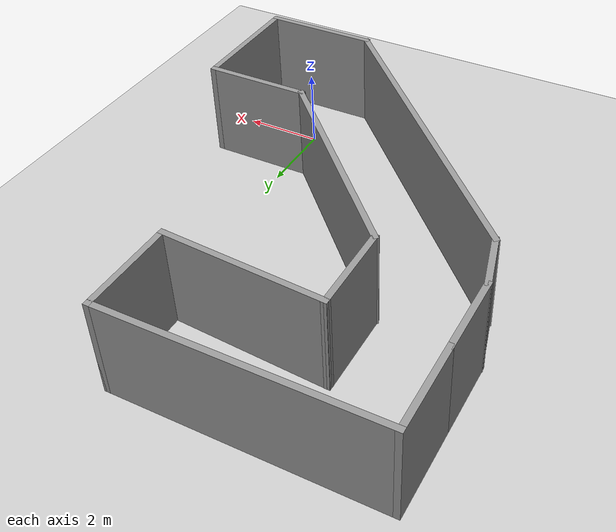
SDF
<sdf version="1.6">
 <world name="default">
  <light name="sun" type="directional">
   <pose>0 0 10 0 -0 0</pose>
   <diffuse>0.8 0.8 0.8 1</diffuse>
   <specular>0.2 0.2 0.2 1</specular>
   <attenuation>
    <range>1000</range>
    <constant>0.9</constant>
    <linear>0.01</linear>
    <quadratic>0.001</quadratic>
   </attenuation>
   <direction>-0.5 0.1 -0.9</direction>
  </light>
  <model name="ground_plane">
   <static>1</static>
   <link name="link">
    <collision name="collision">
     <geometry><plane><normal>0 0 1</normal><size>100 100</size></plane></geometry>
     <surface>
      <contact><collide_bitmask>65535</collide_bitmask></contact>
      <friction><ode><mu>100</mu><mu2>50</mu2></ode></friction>
     </surface>
    </collision>
    <visual name="visual">
     <cast_shadows>0</cast_shadows>
     <geometry><plane><normal>0 0 1</normal><size>100 100</size></plane></geometry>
     <material>
      <script><uri>file://media/materials/scripts/gazebo.material</uri><name>Gazebo/Grey</name></script>
     </material>
    </visual>
   </link>
  </model>
  <gravity>0 0 -9.8</gravity>
  <magnetic_field>6e-06 2.3e-05 -4.2e-05</magnetic_field>
  <atmosphere type="adiabatic"/>
  <physics name="default_physics" default="0" type="ode">
   <max_step_size>0.001</max_step_size>
   <real_time_factor>1</real_time_factor>
   <real_time_update_rate>1000</real_time_update_rate>
  </physics>
  <scene><ambient>0.4 0.4 0.4 1</ambient><background>0.7 0.7 0.7 1</background><shadows>1</shadows></scene>
  <spherical_coordinates>
   <surface_model>EARTH_WGS84</surface_model>
   <latitude_deg>0</latitude_deg>
   <longitude_deg>0</longitude_deg>
   <elevation>0</elevation>
   <heading_deg>0</heading_deg>
  </spherical_coordinates>
  <model name="Untitled">
   <pose>-2.62244 4.0511 0 0 -0 0</pose>
   <link name="Wall_0">
    <collision name="Wall_0_Collision">
     <geometry><box><size>3 0.15 2.5</size></box></geometry>
     <pose>0 0 1.25 0 -0 0</pose>
    </collision>
    <visual name="Wall_0_Visual">
     <pose>0 0 1.25 0 -0 0</pose>
     <geometry><box><size>3 0.15 2.5</size></box></geometry>
     <material>
      <script><uri>file://media/materials/scripts/gazebo.material</uri><name>Gazebo/Grey</name></script>
      <ambient>1 1 1 1</ambient>
     </material>
     <meta><layer>0</layer></meta>
    </visual>
    <pose>3.25171 -5.70275 0 0 -0 0</pose>
   </link>
   <link name="Wall_10">
    <collision name="Wall_10_Collision">
     <geometry><box><size>1.5 0.15 2.5</size></box></geometry>
     <pose>0 0 1.25 0 -0 0</pose>
    </collision>
    <visual name="Wall_10_Visual">
     <pose>0 0 1.25 0 -0 0</pose>
     <geometry><box><size>1.5 0.15 2.5</size></box></geometry>
     <material>
      <script><uri>file://media/materials/scripts/gazebo.material</uri><name>Gazebo/Grey</name></script>
      <ambient>1 1 1 1</ambient>
     </material>
     <meta><layer>0</layer></meta>
    </visual>
    <pose>-4.48516 1.13182 0 0 0 -1.309</pose>
   </link>
   <link name="Wall_11">
    <collision name="Wall_11_Collision">
     <geometry><box><size>8.86143 0.15 2.5</size></box></geometry>
     <pose>0 0 1.25 0 -0 0</pose>
    </collision>
    <visual name="Wall_11_Visual">
     <pose>0 0 1.25 0 -0 0</pose>
     <geometry><box><size>8.86143 0.15 2.5</size></box></geometry>
     <material>
      <script><uri>file://media/materials/scripts/gazebo.material</uri><name>Gazebo/Grey</name></script>
      <ambient>1 1 1 1</ambient>
     </material>
     <meta><layer>0</layer></meta>
    </visual>
    <pose>-1.24187 -2.61147 0 0 0 -0.789084</pose>
   </link>
   <link name="Wall_13">
    <collision name="Wall_13_Collision">
     <geometry><box><size>2.25 0.15 2.5</size></box></geometry>
     <pose>0 0 1.25 0 -0 0</pose>
    </collision>
    <visual name="Wall_13_Visual">
     <pose>0 0 1.25 0 -0 0</pose>
     <geometry><box><size>2.25 0.15 2.5</size></box></geometry>
     <material>
      <script><uri>file://media/materials/scripts/gazebo.material</uri><name>Gazebo/Grey</name></script>
      <ambient>1 1 1 1</ambient>
     </material>
     <meta><layer>0</layer></meta>
    </visual>
    <pose>-4.65986 4.68382 0 0 -0 1.5708</pose>
   </link>
   <link name="Wall_15">
    <collision name="Wall_15_Collision">
     <geometry><box><size>6.75 0.15 2.5</size></box></geometry>
     <pose>0 0 1.25 0 -0 0</pose>
    </collision>
    <visual name="Wall_15_Visual">
     <pose>0 0 1.25 0 -0 0</pose>
     <geometry><box><size>6.75 0.15 2.5</size></box></geometry>
     <material>
      <script><uri>file://media/materials/scripts/gazebo.material</uri><name>Gazebo/Grey</name></script>
      <ambient>1 1 1 1</ambient>
     </material>
     <meta><layer>0</layer></meta>
    </visual>
    <pose>-1.35986 5.73382 0 0 -0 0</pose>
   </link>
   <link name="Wall_16">
    <collision name="Wall_16_Collision">
     <geometry><box><size>2.5 0.15 2.5</size></box></geometry>
     <pose>0 0 1.25 0 -0 0</pose>
    </collision>
    <visual name="Wall_16_Visual">
     <pose>0 0 1.25 0 -0 0</pose>
     <geometry><box><size>2.5 0.15 2.5</size></box></geometry>
     <material>
      <script><uri>file://media/materials/scripts/gazebo.material</uri><name>Gazebo/Grey</name></script>
      <ambient>1 1 1 1</ambient>
     </material>
     <meta><layer>0</layer></meta>
    </visual>
    <pose>1.94014 4.55882 0 0 0 -1.5708</pose>
   </link>
   <link name="Wall_17">
    <collision name="Wall_17_Collision">
     <geometry><box><size>4.1578 0.15 2.5</size></box></geometry>
     <pose>0 0 1.25 0 -0 0</pose>
    </collision>
    <visual name="Wall_17_Visual">
     <pose>0 0 1.25 0 -0 0</pose>
     <geometry><box><size>4.1578 0.15 2.5</size></box></geometry>
     <material>
      <script><uri>file://media/materials/scripts/gazebo.material</uri><name>Gazebo/Grey</name></script>
      <ambient>1 1 1 1</ambient>
     </material>
     <meta><layer>0</layer></meta>
    </visual>
    <pose>-0.05986 3.50882 0 0 -0 3.07917</pose>
   </link>
   <link name="Wall_2">
    <collision name="Wall_2_Collision">
     <geometry><box><size>3.25 0.15 2.5</size></box></geometry>
     <pose>0 0 1.25 0 -0 0</pose>
    </collision>
    <visual name="Wall_2_Visual">
     <pose>0 0 1.25 0 -0 0</pose>
     <geometry><box><size>3.25 0.15 2.5</size></box></geometry>
     <material>
      <script><uri>file://media/materials/scripts/gazebo.material</uri><name>Gazebo/Grey</name></script>
      <ambient>1 1 1 1</ambient>
     </material>
     <meta><layer>0</layer></meta>
    </visual>
    <pose>4.67671 -4.15275 0 0 -0 1.5708</pose>
   </link>
   <link name="Wall_5">
    <collision name="Wall_5_Collision">
     <geometry><box><size>2.75 0.15 2.5</size></box></geometry>
     <pose>0 0 1.25 0 -0 0</pose>
    </collision>
    <visual name="Wall_5_Visual">
     <pose>0 0 1.25 0 -0 0</pose>
     <geometry><box><size>2.75 0.15 2.5</size></box></geometry>
     <material>
      <script><uri>file://media/materials/scripts/gazebo.material</uri><name>Gazebo/Grey</name></script>
      <ambient>1 1 1 1</ambient>
     </material>
     <meta><layer>0</layer></meta>
    </visual>
    <pose>3.37671 -2.60275 0 0 -0 3.14159</pose>
   </link>
   <link name="Wall_6">
    <collision name="Wall_6_Collision">
     <geometry><box><size>6 0.15 2.5</size></box></geometry>
     <pose>0 0 1.25 0 -0 0</pose>
    </collision>
    <visual name="Wall_6_Visual">
     <pose>0 0 1.25 0 -0 0</pose>
     <geometry><box><size>6 0.15 2.5</size></box></geometry>
     <material>
      <script><uri>file://media/materials/scripts/gazebo.material</uri><name>Gazebo/Grey</name></script>
      <ambient>1 1 1 1</ambient>
     </material>
     <meta><layer>0</layer></meta>
    </visual>
    <pose>0.008428 -0.534467 0 0 -0 2.35619</pose>
   </link>
   <link name="Wall_7">
    <collision name="Wall_7_Collision">
     <geometry><box><size>2.25 0.15 2.5</size></box></geometry>
     <pose>0 0 1.25 0 -0 0</pose>
    </collision>
    <visual name="Wall_7_Visual">
     <pose>0 0 1.25 0 -0 0</pose>
     <geometry><box><size>2.25 0.15 2.5</size></box></geometry>
     <material>
      <script><uri>file://media/materials/scripts/gazebo.material</uri><name>Gazebo/Grey</name></script>
      <ambient>1 1 1 1</ambient>
     </material>
     <meta><layer>0</layer></meta>
    </visual>
    <pose>-2.05986 2.58382 0 0 -0 1.5708</pose>
   </link>
   <link name="Wall_9">
    <collision name="Wall_9_Collision">
     <geometry><box><size>2 0.15 2.5</size></box></geometry>
     <pose>0 0 1.25 0 -0 0</pose>
    </collision>
    <visual name="Wall_9_Visual">
     <pose>0 0 1.25 0 -0 0</pose>
     <geometry><box><size>2 0.15 2.5</size></box></geometry>
     <material>
      <script><uri>file://media/materials/scripts/gazebo.material</uri><name>Gazebo/Grey</name></script>
      <ambient>1 1 1 1</ambient>
     </material>
     <meta><layer>0</layer></meta>
    </visual>
    <pose>-4.65986 2.70882 0 0 0 -1.5708</pose>
   </link>
   <static>1</static>
  </model>
 </world>
</sdf>
